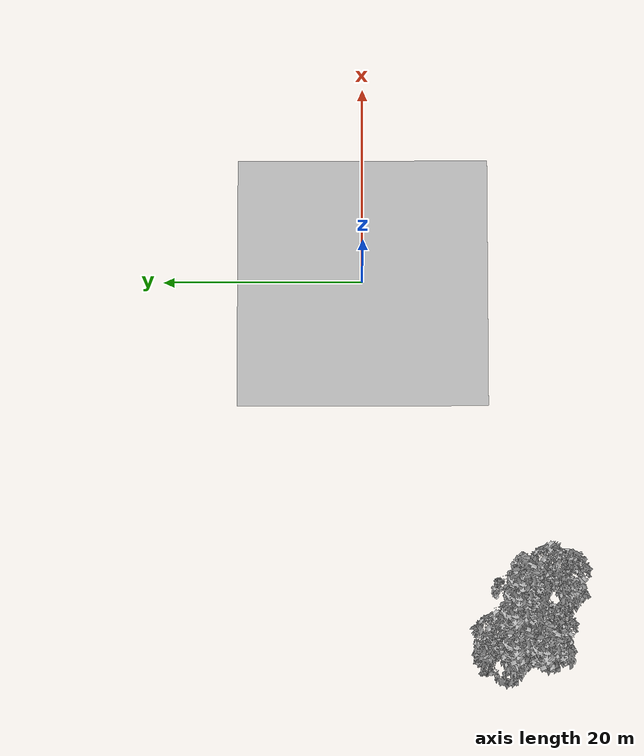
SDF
<sdf version="1.7">
 <world name="default">
  <model name="ground_plane">
   <static>1</static>
   <link name="link">
    <collision name="collision">
     <pose>-50 0 0 0 -0 0</pose>
     <geometry><plane><normal>0 0 1</normal><size>80 80</size></plane></geometry>
     <surface><contact><ode><min_depth>0.01</min_depth><max_vel>0</max_vel></ode></contact></surface>
    </collision>
    <visual name="grass">
     <cast_shadows>0</cast_shadows>
     <geometry>
      <mesh>
       <scale>0.46714285714285714 0.46714285714285714 0.1</scale>
       <uri>file://grass_plane/meshes/grass_plane.dae</uri>
      </mesh>
     </geometry>
    </visual>
   </link>
  </model>
  <model name="Tree 23">
   <static>1</static>
   <pose>-38.60829791847613 -17.76087794490655 0 1.57079 -0 0</pose>
   <link name="link">
    <collision name="collision">
     <geometry><mesh><scale>3.5 5 3.5</scale><uri>model://tree_9/meshes/tree_9.obj</uri></mesh></geometry>
    </collision>
    <visual name="visual">
     <geometry><mesh><scale>3.5 5 3.5</scale><uri>model://tree_9/meshes/tree_9.obj</uri></mesh></geometry>
    </visual>
   </link>
  </model>
  <model name="Tree 174">
   <static>1</static>
   <pose>-31.114051006210115 -18.8561785927366 0 1.57079 -0 0</pose>
   <link name="link">
    <collision name="collision">
     <geometry><mesh><scale>3.5 5 3.5</scale><uri>model://tree_2/meshes/tree_2.obj</uri></mesh></geometry>
    </collision>
    <visual name="visual">
     <geometry><mesh><scale>3.5 5 3.5</scale><uri>model://tree_2/meshes/tree_2.obj</uri></mesh></geometry>
    </visual>
   </link>
  </model>
  <model name="Tree 246">
   <static>1</static>
   <pose>-33.43554146328792 -15.173266426239564 0 1.57079 -0 0</pose>
   <link name="link">
    <collision name="collision">
     <geometry><mesh><scale>3.5 5 3.5</scale><uri>model://tree_9/meshes/tree_9.obj</uri></mesh></geometry>
    </collision>
    <visual name="visual">
     <geometry><mesh><scale>3.5 5 3.5</scale><uri>model://tree_9/meshes/tree_9.obj</uri></mesh></geometry>
    </visual>
   </link>
  </model>
  <model name="Tree 283">
   <static>1</static>
   <pose>-32.07541456486322 -15.536880412894682 0 1.57079 -0 0</pose>
   <link name="link">
    <collision name="collision">
     <geometry><mesh><scale>3.5 5 3.5</scale><uri>model://tree_9/meshes/tree_9.obj</uri></mesh></geometry>
    </collision>
    <visual name="visual">
     <geometry><mesh><scale>3.5 5 3.5</scale><uri>model://tree_9/meshes/tree_9.obj</uri></mesh></geometry>
    </visual>
   </link>
  </model>
  <model name="Tree 450">
   <static>1</static>
   <pose>-38.114522363771876 -14.9218226611072 0 1.57079 -0 0</pose>
   <link name="link">
    <collision name="collision">
     <geometry><mesh><scale>3.5 5 3.5</scale><uri>model://tree_9/meshes/tree_9.obj</uri></mesh></geometry>
    </collision>
    <visual name="visual">
     <geometry><mesh><scale>3.5 5 3.5</scale><uri>model://tree_9/meshes/tree_9.obj</uri></mesh></geometry>
    </visual>
   </link>
  </model>
  <model name="Tree 456">
   <static>1</static>
   <pose>-37.837504158660586 -13.464659553905829 0 1.57079 -0 0</pose>
   <link name="link">
    <collision name="collision">
     <geometry><mesh><scale>3.5 5 3.5</scale><uri>model://tree_2/meshes/tree_2.obj</uri></mesh></geometry>
    </collision>
    <visual name="visual">
     <geometry><mesh><scale>3.5 5 3.5</scale><uri>model://tree_2/meshes/tree_2.obj</uri></mesh></geometry>
    </visual>
   </link>
  </model>
  <model name="Tree 471">
   <static>1</static>
   <pose>-36.491543559854 -17.518859393379493 0 1.57079 -0 0</pose>
   <link name="link">
    <collision name="collision">
     <geometry><mesh><scale>3.5 5 3.5</scale><uri>model://tree_2/meshes/tree_2.obj</uri></mesh></geometry>
    </collision>
    <visual name="visual">
     <geometry><mesh><scale>3.5 5 3.5</scale><uri>model://tree_2/meshes/tree_2.obj</uri></mesh></geometry>
    </visual>
   </link>
  </model>
  <model name="Tree 629">
   <static>1</static>
   <pose>-35.12090903495967 -14.821099986769255 0 1.57079 -0 0</pose>
   <link name="link">
    <collision name="collision">
     <geometry><mesh><scale>3.5 5 3.5</scale><uri>model://tree_9/meshes/tree_9.obj</uri></mesh></geometry>
    </collision>
    <visual name="visual">
     <geometry><mesh><scale>3.5 5 3.5</scale><uri>model://tree_9/meshes/tree_9.obj</uri></mesh></geometry>
    </visual>
   </link>
  </model>
  <model name="Bush 192">
   <static>1</static>
   <pose>-30.50980924587017 -13.579962675415189 0 1.57079 -0 0</pose>
   <link name="link">
    <collision name="collision">
     <geometry><mesh><scale>2 2 2</scale><uri>model://bush_2/meshes/bush_2.obj</uri></mesh></geometry>
     <surface><contact><collide_without_contact>false</collide_without_contact></contact></surface>
    </collision>
    <visual name="visual">
     <geometry><mesh><scale>2 2 2</scale><uri>model://bush_2/meshes/bush_2.obj</uri></mesh></geometry>
    </visual>
   </link>
  </model>
  <model name="Bush 242">
   <static>1</static>
   <pose>-35.79256839752678 -15.034420375965194 0 1.57079 -0 0</pose>
   <link name="link">
    <collision name="collision">
     <geometry><mesh><scale>2 2 2</scale><uri>model://bush_2/meshes/bush_2.obj</uri></mesh></geometry>
     <surface><contact><collide_without_contact>false</collide_without_contact></contact></surface>
    </collision>
    <visual name="visual">
     <geometry><mesh><scale>2 2 2</scale><uri>model://bush_2/meshes/bush_2.obj</uri></mesh></geometry>
    </visual>
   </link>
  </model>
  <model name="Bush 484">
   <static>1</static>
   <pose>-30.5549096990496 -13.49152890486468 0 1.57079 -0 0</pose>
   <link name="link">
    <collision name="collision">
     <geometry><mesh><scale>2 2 2</scale><uri>model://bush_2/meshes/bush_2.obj</uri></mesh></geometry>
     <surface><contact><collide_without_contact>false</collide_without_contact></contact></surface>
    </collision>
    <visual name="visual">
     <geometry><mesh><scale>2 2 2</scale><uri>model://bush_2/meshes/bush_2.obj</uri></mesh></geometry>
    </visual>
   </link>
  </model>
  <model name="Bush 607">
   <static>1</static>
   <pose>-31.429174130087766 -13.169089356894528 0 1.57079 -0 0</pose>
   <link name="link">
    <collision name="collision">
     <geometry><mesh><scale>2 2 2</scale><uri>model://bush_0/meshes/bush_0.obj</uri></mesh></geometry>
     <surface><contact><collide_without_contact>false</collide_without_contact></contact></surface>
    </collision>
    <visual name="visual">
     <geometry><mesh><scale>2 2 2</scale><uri>model://bush_0/meshes/bush_0.obj</uri></mesh></geometry>
    </visual>
   </link>
  </model>
 </world>
</sdf>
